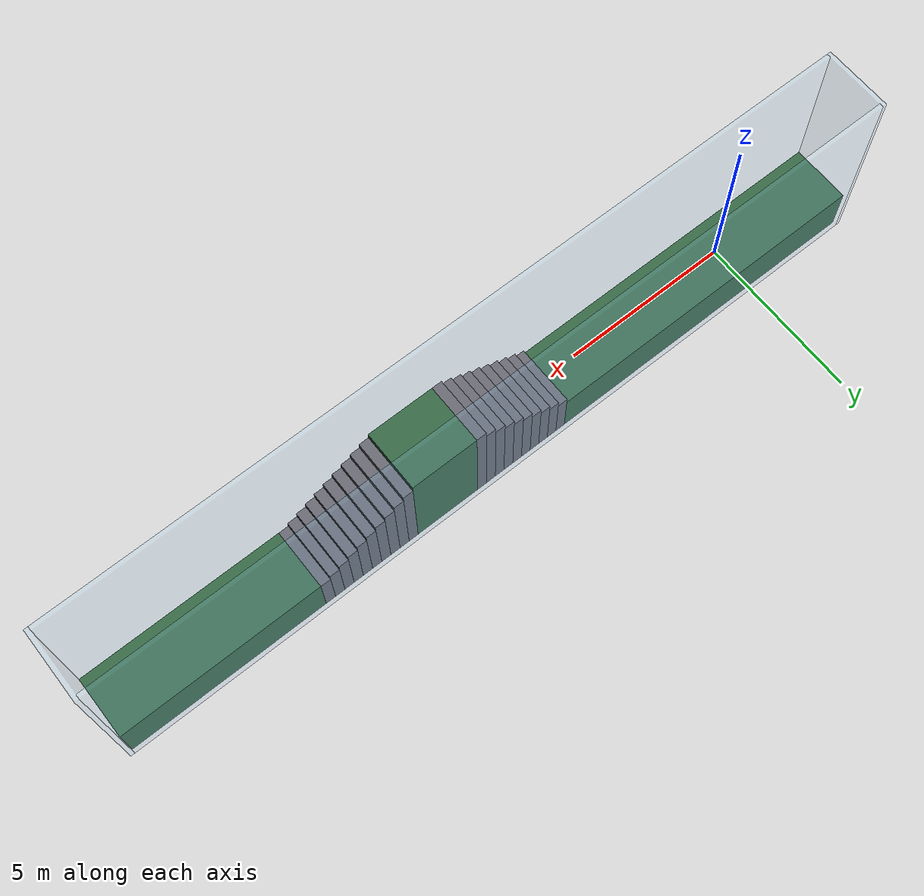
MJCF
<?xml version="1.0" encoding="utf-8"?>
<mujoco model="stairs push 20cm terrain">
  <!-- +X: flat to x=6, 10 steps up (20 cm rise, 30 cm tread), 2 m top, 10 steps down, flat to x=20.0. Up steps x=6.0-9.0, top 9.0-11.0, down 11.0-14.0. -->
  <statistic center="10.00 0 0.8" extent="14.0"/>
  <visual>
    <headlight diffuse="0.7 0.7 0.7" ambient="0.25 0.25 0.25"/>
    <global azimuth="-125" elevation="-22"/>
  </visual>
  <default>
    <default class="course">
      <geom type="box" friction="0.8 0.8 0.8" priority="2" contype="1" conaffinity="1"/>
    </default>
    <default class="guard">
      <geom type="box" friction="0.3 0.005 0.0001" contype="1" conaffinity="1" rgba="0.55 0.8 0.95 0.18"/>
    </default>
  </default>
  <worldbody>
    <light pos="10.0 0 8" dir="0 0 -1" directional="true"/>
    <geom name="start_flat" class="course" pos="1.000 0 -0.750" size="5.000 0.90 0.750" rgba="0.22 0.42 0.28 1"/>
    <geom name="up1" class="course" pos="6.150 0 -0.650" size="0.150 0.90 0.850" rgba="0.42 0.42 0.46 1"/>
    <geom name="up2" class="course" pos="6.450 0 -0.550" size="0.150 0.90 0.950" rgba="0.42 0.42 0.46 1"/>
    <geom name="up3" class="course" pos="6.750 0 -0.450" size="0.150 0.90 1.050" rgba="0.42 0.42 0.46 1"/>
    <geom name="up4" class="course" pos="7.050 0 -0.350" size="0.150 0.90 1.150" rgba="0.42 0.42 0.46 1"/>
    <geom name="up5" class="course" pos="7.350 0 -0.250" size="0.150 0.90 1.250" rgba="0.42 0.42 0.46 1"/>
    <geom name="up6" class="course" pos="7.650 0 -0.150" size="0.150 0.90 1.350" rgba="0.42 0.42 0.46 1"/>
    <geom name="up7" class="course" pos="7.950 0 -0.050" size="0.150 0.90 1.450" rgba="0.42 0.42 0.46 1"/>
    <geom name="up8" class="course" pos="8.250 0 0.050" size="0.150 0.90 1.550" rgba="0.42 0.42 0.46 1"/>
    <geom name="up9" class="course" pos="8.550 0 0.150" size="0.150 0.90 1.650" rgba="0.42 0.42 0.46 1"/>
    <geom name="up10" class="course" pos="8.850 0 0.250" size="0.150 0.90 1.750" rgba="0.42 0.42 0.46 1"/>
    <geom name="top" class="course" pos="10.000 0 0.250" size="1.000 0.90 1.750" rgba="0.22 0.42 0.28 1"/>
    <geom name="down1" class="course" pos="11.150 0 0.150" size="0.150 0.90 1.650" rgba="0.42 0.42 0.46 1"/>
    <geom name="down2" class="course" pos="11.450 0 0.050" size="0.150 0.90 1.550" rgba="0.42 0.42 0.46 1"/>
    <geom name="down3" class="course" pos="11.750 0 -0.050" size="0.150 0.90 1.450" rgba="0.42 0.42 0.46 1"/>
    <geom name="down4" class="course" pos="12.050 0 -0.150" size="0.150 0.90 1.350" rgba="0.42 0.42 0.46 1"/>
    <geom name="down5" class="course" pos="12.350 0 -0.250" size="0.150 0.90 1.250" rgba="0.42 0.42 0.46 1"/>
    <geom name="down6" class="course" pos="12.650 0 -0.350" size="0.150 0.90 1.150" rgba="0.42 0.42 0.46 1"/>
    <geom name="down7" class="course" pos="12.950 0 -0.450" size="0.150 0.90 1.050" rgba="0.42 0.42 0.46 1"/>
    <geom name="down8" class="course" pos="13.250 0 -0.550" size="0.150 0.90 0.950" rgba="0.42 0.42 0.46 1"/>
    <geom name="down9" class="course" pos="13.550 0 -0.650" size="0.150 0.90 0.850" rgba="0.42 0.42 0.46 1"/>
    <geom name="down10" class="course" pos="13.850 0 -0.750" size="0.150 0.90 0.750" rgba="0.42 0.42 0.46 1"/>
    <geom name="finish_flat" class="course" pos="17.000 0 -0.750" size="3.000 0.90 0.750" rgba="0.22 0.42 0.28 1"/>
    <geom name="guard_left" class="guard" pos="8.000 0.96 1.5" size="12.000 0.06 3.0"/>
    <geom name="guard_right" class="guard" pos="8.000 -0.96 1.5" size="12.000 0.06 3.0"/>
    <geom name="guard_start" class="guard" pos="-4.06 0 1.5" size="0.06 1.02 3.0"/>
    <geom name="guard_finish" class="guard" pos="20.06 0 1.5" size="0.06 1.02 3.0"/>
  </worldbody>
  <contact>
    <pair geom1="RR" geom2="start_flat"/>
    <pair geom1="RL" geom2="start_flat"/>
    <pair geom1="FR" geom2="start_flat"/>
    <pair geom1="FL" geom2="start_flat"/>
    <pair geom1="RR" geom2="up1"/>
    <pair geom1="RL" geom2="up1"/>
    <pair geom1="FR" geom2="up1"/>
    <pair geom1="FL" geom2="up1"/>
    <pair geom1="RR" geom2="up2"/>
    <pair geom1="RL" geom2="up2"/>
    <pair geom1="FR" geom2="up2"/>
    <pair geom1="FL" geom2="up2"/>
    <pair geom1="RR" geom2="up3"/>
    <pair geom1="RL" geom2="up3"/>
    <pair geom1="FR" geom2="up3"/>
    <pair geom1="FL" geom2="up3"/>
    <pair geom1="RR" geom2="up4"/>
    <pair geom1="RL" geom2="up4"/>
    <pair geom1="FR" geom2="up4"/>
    <pair geom1="FL" geom2="up4"/>
    <pair geom1="RR" geom2="up5"/>
    <pair geom1="RL" geom2="up5"/>
    <pair geom1="FR" geom2="up5"/>
    <pair geom1="FL" geom2="up5"/>
    <pair geom1="RR" geom2="up6"/>
    <pair geom1="RL" geom2="up6"/>
    <pair geom1="FR" geom2="up6"/>
    <pair geom1="FL" geom2="up6"/>
    <pair geom1="RR" geom2="up7"/>
    <pair geom1="RL" geom2="up7"/>
    <pair geom1="FR" geom2="up7"/>
    <pair geom1="FL" geom2="up7"/>
    <pair geom1="RR" geom2="up8"/>
    <pair geom1="RL" geom2="up8"/>
    <pair geom1="FR" geom2="up8"/>
    <pair geom1="FL" geom2="up8"/>
    <pair geom1="RR" geom2="up9"/>
    <pair geom1="RL" geom2="up9"/>
    <pair geom1="FR" geom2="up9"/>
    <pair geom1="FL" geom2="up9"/>
    <pair geom1="RR" geom2="up10"/>
    <pair geom1="RL" geom2="up10"/>
    <pair geom1="FR" geom2="up10"/>
    <pair geom1="FL" geom2="up10"/>
    <pair geom1="RR" geom2="top"/>
    <pair geom1="RL" geom2="top"/>
    <pair geom1="FR" geom2="top"/>
    <pair geom1="FL" geom2="top"/>
    <pair geom1="RR" geom2="down1"/>
    <pair geom1="RL" geom2="down1"/>
    <pair geom1="FR" geom2="down1"/>
    <pair geom1="FL" geom2="down1"/>
    <pair geom1="RR" geom2="down2"/>
    <pair geom1="RL" geom2="down2"/>
    <pair geom1="FR" geom2="down2"/>
    <pair geom1="FL" geom2="down2"/>
    <pair geom1="RR" geom2="down3"/>
    <pair geom1="RL" geom2="down3"/>
    <pair geom1="FR" geom2="down3"/>
    <pair geom1="FL" geom2="down3"/>
    <pair geom1="RR" geom2="down4"/>
    <pair geom1="RL" geom2="down4"/>
    <pair geom1="FR" geom2="down4"/>
    <pair geom1="FL" geom2="down4"/>
    <pair geom1="RR" geom2="down5"/>
    <pair geom1="RL" geom2="down5"/>
    <pair geom1="FR" geom2="down5"/>
    <pair geom1="FL" geom2="down5"/>
    <pair geom1="RR" geom2="down6"/>
    <pair geom1="RL" geom2="down6"/>
    <pair geom1="FR" geom2="down6"/>
    <pair geom1="FL" geom2="down6"/>
    <pair geom1="RR" geom2="down7"/>
    <pair geom1="RL" geom2="down7"/>
    <pair geom1="FR" geom2="down7"/>
    <pair geom1="FL" geom2="down7"/>
    <pair geom1="RR" geom2="down8"/>
    <pair geom1="RL" geom2="down8"/>
    <pair geom1="FR" geom2="down8"/>
    <pair geom1="FL" geom2="down8"/>
    <pair geom1="RR" geom2="down9"/>
    <pair geom1="RL" geom2="down9"/>
    <pair geom1="FR" geom2="down9"/>
    <pair geom1="FL" geom2="down9"/>
    <pair geom1="RR" geom2="down10"/>
    <pair geom1="RL" geom2="down10"/>
    <pair geom1="FR" geom2="down10"/>
    <pair geom1="FL" geom2="down10"/>
    <pair geom1="RR" geom2="finish_flat"/>
    <pair geom1="RL" geom2="finish_flat"/>
    <pair geom1="FR" geom2="finish_flat"/>
    <pair geom1="FL" geom2="finish_flat"/>
  </contact>
</mujoco>
